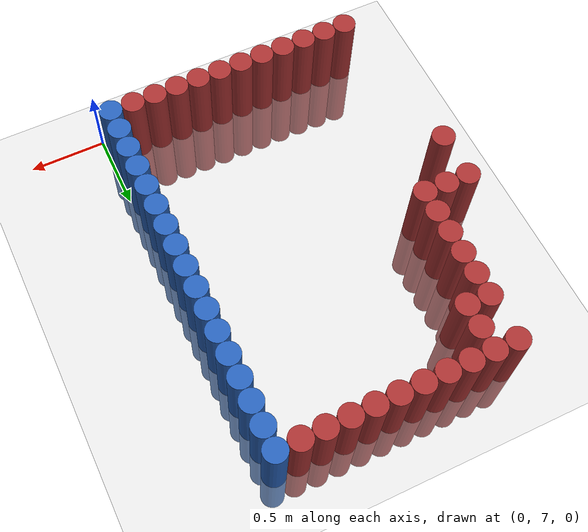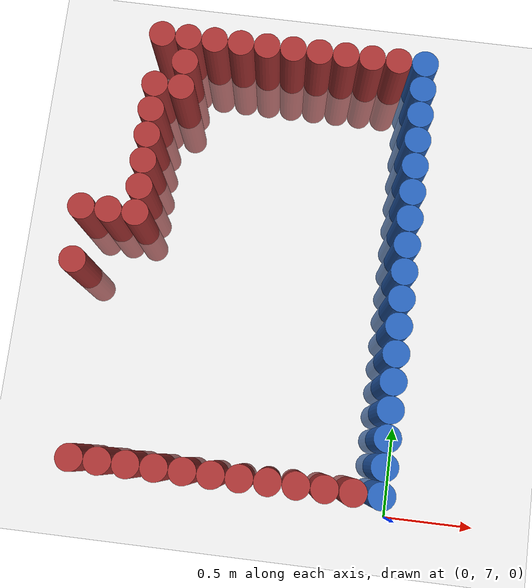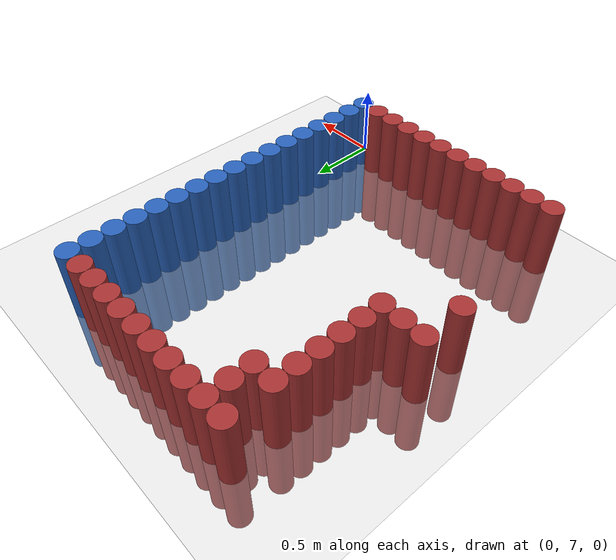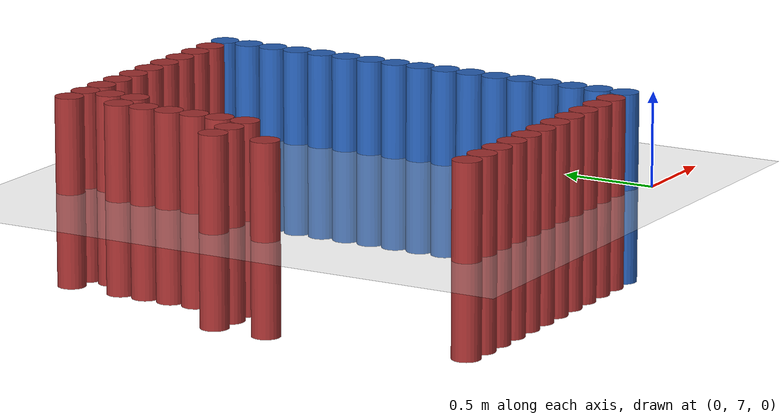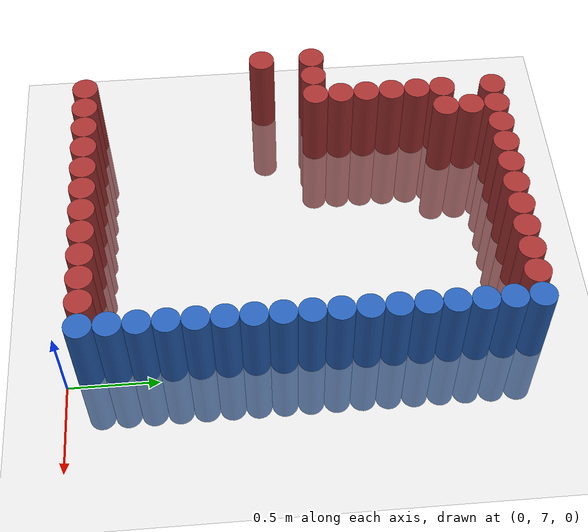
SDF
<sdf version="1.6">
 <world name="default">
  <model name="ground_plane">
   <static>1</static>
   <link name="link">
    <collision name="collision">
     <geometry><plane><normal>0 0 1</normal><size>100 100</size></plane></geometry>
     <surface><friction><ode><mu>100</mu><mu2>50</mu2></ode></friction></surface>
    </collision>
    <visual name="visual">
     <cast_shadows>0</cast_shadows>
     <geometry><plane><normal>0 0 1</normal><size>100 100</size></plane></geometry>
     <material>
      <script><uri>file://media/materials/scripts/gazebo.material</uri><name>Gazebo/Grey</name></script>
     </material>
    </visual>
   </link>
  </model>
  <model name="unit_cylinder_214">
   <static>1</static>
   <pose>-1.875000 8.175000 0.000000 0.000000 0.000000 0.000000</pose>
   <link name="link">
    <inertial>
     <mass>1</mass>
     <inertia><ixx>0.145833</ixx><ixy>0</ixy><ixz>0</ixz><iyy>0.145833</iyy><iyz>0</iyz><izz>0.125</izz></inertia>
    </inertial>
    <collision name="collision">
     <geometry><cylinder><radius>0.075000</radius><length>1</length></cylinder></geometry>
    </collision>
    <visual name="visual">
     <geometry><cylinder><radius>0.075000</radius><length>1</length></cylinder></geometry>
     <material>
      <ambient>0.648000 0.192000 0.192000 1</ambient>
      <diffuse>0.648000 0.192000 0.192000 1</diffuse>
     </material>
     <material>
      <script><name>Gazebo/Grey</name><uri>file://media/materials/scripts/gazebo.material</uri></script>
     </material>
    </visual>
   </link>
  </model>
  <model name="unit_cylinder_215">
   <static>1</static>
   <pose>-1.875000 8.475000 0.000000 0.000000 0.000000 0.000000</pose>
   <link name="link">
    <inertial>
     <mass>1</mass>
     <inertia><ixx>0.145833</ixx><ixy>0</ixy><ixz>0</ixz><iyy>0.145833</iyy><iyz>0</iyz><izz>0.125</izz></inertia>
    </inertial>
    <collision name="collision">
     <geometry><cylinder><radius>0.075000</radius><length>1</length></cylinder></geometry>
    </collision>
    <visual name="visual">
     <geometry><cylinder><radius>0.075000</radius><length>1</length></cylinder></geometry>
     <material>
      <ambient>0.648000 0.192000 0.192000 1</ambient>
      <diffuse>0.648000 0.192000 0.192000 1</diffuse>
     </material>
     <material>
      <script><name>Gazebo/Grey</name><uri>file://media/materials/scripts/gazebo.material</uri></script>
     </material>
    </visual>
   </link>
  </model>
  <model name="unit_cylinder_221">
   <static>1</static>
   <pose>-1.725000 7.125000 0.000000 0.000000 0.000000 0.000000</pose>
   <link name="link">
    <inertial>
     <mass>1</mass>
     <inertia><ixx>0.145833</ixx><ixy>0</ixy><ixz>0</ixz><iyy>0.145833</iyy><iyz>0</iyz><izz>0.125</izz></inertia>
    </inertial>
    <collision name="collision">
     <geometry><cylinder><radius>0.075000</radius><length>1</length></cylinder></geometry>
    </collision>
    <visual name="visual">
     <geometry><cylinder><radius>0.075000</radius><length>1</length></cylinder></geometry>
     <material>
      <ambient>0.648000 0.192000 0.192000 1</ambient>
      <diffuse>0.648000 0.192000 0.192000 1</diffuse>
     </material>
     <material>
      <script><name>Gazebo/Grey</name><uri>file://media/materials/scripts/gazebo.material</uri></script>
     </material>
    </visual>
   </link>
  </model>
  <model name="unit_cylinder_222">
   <static>1</static>
   <pose>-1.725000 8.475000 0.000000 0.000000 0.000000 0.000000</pose>
   <link name="link">
    <inertial>
     <mass>1</mass>
     <inertia><ixx>0.145833</ixx><ixy>0</ixy><ixz>0</ixz><iyy>0.145833</iyy><iyz>0</iyz><izz>0.125</izz></inertia>
    </inertial>
    <collision name="collision">
     <geometry><cylinder><radius>0.075000</radius><length>1</length></cylinder></geometry>
    </collision>
    <visual name="visual">
     <geometry><cylinder><radius>0.075000</radius><length>1</length></cylinder></geometry>
     <material>
      <ambient>0.648000 0.192000 0.192000 1</ambient>
      <diffuse>0.648000 0.192000 0.192000 1</diffuse>
     </material>
     <material>
      <script><name>Gazebo/Grey</name><uri>file://media/materials/scripts/gazebo.material</uri></script>
     </material>
    </visual>
   </link>
  </model>
  <model name="unit_cylinder_225">
   <static>1</static>
   <pose>-1.575000 7.125000 0.000000 0.000000 0.000000 0.000000</pose>
   <link name="link">
    <inertial>
     <mass>1</mass>
     <inertia><ixx>0.145833</ixx><ixy>0</ixy><ixz>0</ixz><iyy>0.145833</iyy><iyz>0</iyz><izz>0.125</izz></inertia>
    </inertial>
    <collision name="collision">
     <geometry><cylinder><radius>0.075000</radius><length>1</length></cylinder></geometry>
    </collision>
    <visual name="visual">
     <geometry><cylinder><radius>0.075000</radius><length>1</length></cylinder></geometry>
     <material>
      <ambient>0.648000 0.192000 0.192000 1</ambient>
      <diffuse>0.648000 0.192000 0.192000 1</diffuse>
     </material>
     <material>
      <script><name>Gazebo/Grey</name><uri>file://media/materials/scripts/gazebo.material</uri></script>
     </material>
    </visual>
   </link>
  </model>
  <model name="unit_cylinder_226">
   <static>1</static>
   <pose>-1.575000 8.475000 0.000000 0.000000 0.000000 0.000000</pose>
   <link name="link">
    <inertial>
     <mass>1</mass>
     <inertia><ixx>0.145833</ixx><ixy>0</ixy><ixz>0</ixz><iyy>0.145833</iyy><iyz>0</iyz><izz>0.125</izz></inertia>
    </inertial>
    <collision name="collision">
     <geometry><cylinder><radius>0.075000</radius><length>1</length></cylinder></geometry>
    </collision>
    <visual name="visual">
     <geometry><cylinder><radius>0.075000</radius><length>1</length></cylinder></geometry>
     <material>
      <ambient>0.648000 0.192000 0.192000 1</ambient>
      <diffuse>0.648000 0.192000 0.192000 1</diffuse>
     </material>
     <material>
      <script><name>Gazebo/Grey</name><uri>file://media/materials/scripts/gazebo.material</uri></script>
     </material>
    </visual>
   </link>
  </model>
  <model name="unit_cylinder_227">
   <static>1</static>
   <pose>-1.575000 8.625000 0.000000 0.000000 0.000000 0.000000</pose>
   <link name="link">
    <inertial>
     <mass>1</mass>
     <inertia><ixx>0.145833</ixx><ixy>0</ixy><ixz>0</ixz><iyy>0.145833</iyy><iyz>0</iyz><izz>0.125</izz></inertia>
    </inertial>
    <collision name="collision">
     <geometry><cylinder><radius>0.075000</radius><length>1</length></cylinder></geometry>
    </collision>
    <visual name="visual">
     <geometry><cylinder><radius>0.075000</radius><length>1</length></cylinder></geometry>
     <material>
      <ambient>0.648000 0.192000 0.192000 1</ambient>
      <diffuse>0.648000 0.192000 0.192000 1</diffuse>
     </material>
     <material>
      <script><name>Gazebo/Grey</name><uri>file://media/materials/scripts/gazebo.material</uri></script>
     </material>
    </visual>
   </link>
  </model>
  <model name="unit_cylinder_228">
   <static>1</static>
   <pose>-1.575000 8.775000 0.000000 0.000000 0.000000 0.000000</pose>
   <link name="link">
    <inertial>
     <mass>1</mass>
     <inertia><ixx>0.145833</ixx><ixy>0</ixy><ixz>0</ixz><iyy>0.145833</iyy><iyz>0</iyz><izz>0.125</izz></inertia>
    </inertial>
    <collision name="collision">
     <geometry><cylinder><radius>0.075000</radius><length>1</length></cylinder></geometry>
    </collision>
    <visual name="visual">
     <geometry><cylinder><radius>0.075000</radius><length>1</length></cylinder></geometry>
     <material>
      <ambient>0.648000 0.192000 0.192000 1</ambient>
      <diffuse>0.648000 0.192000 0.192000 1</diffuse>
     </material>
     <material>
      <script><name>Gazebo/Grey</name><uri>file://media/materials/scripts/gazebo.material</uri></script>
     </material>
    </visual>
   </link>
  </model>
  <model name="unit_cylinder_229">
   <static>1</static>
   <pose>-1.575000 8.925000 0.000000 0.000000 0.000000 0.000000</pose>
   <link name="link">
    <inertial>
     <mass>1</mass>
     <inertia><ixx>0.145833</ixx><ixy>0</ixy><ixz>0</ixz><iyy>0.145833</iyy><iyz>0</iyz><izz>0.125</izz></inertia>
    </inertial>
    <collision name="collision">
     <geometry><cylinder><radius>0.075000</radius><length>1</length></cylinder></geometry>
    </collision>
    <visual name="visual">
     <geometry><cylinder><radius>0.075000</radius><length>1</length></cylinder></geometry>
     <material>
      <ambient>0.648000 0.192000 0.192000 1</ambient>
      <diffuse>0.648000 0.192000 0.192000 1</diffuse>
     </material>
     <material>
      <script><name>Gazebo/Grey</name><uri>file://media/materials/scripts/gazebo.material</uri></script>
     </material>
    </visual>
   </link>
  </model>
  <model name="unit_cylinder_230">
   <static>1</static>
   <pose>-1.575000 9.075000 0.000000 0.000000 0.000000 0.000000</pose>
   <link name="link">
    <inertial>
     <mass>1</mass>
     <inertia><ixx>0.145833</ixx><ixy>0</ixy><ixz>0</ixz><iyy>0.145833</iyy><iyz>0</iyz><izz>0.125</izz></inertia>
    </inertial>
    <collision name="collision">
     <geometry><cylinder><radius>0.075000</radius><length>1</length></cylinder></geometry>
    </collision>
    <visual name="visual">
     <geometry><cylinder><radius>0.075000</radius><length>1</length></cylinder></geometry>
     <material>
      <ambient>0.648000 0.192000 0.192000 1</ambient>
      <diffuse>0.648000 0.192000 0.192000 1</diffuse>
     </material>
     <material>
      <script><name>Gazebo/Grey</name><uri>file://media/materials/scripts/gazebo.material</uri></script>
     </material>
    </visual>
   </link>
  </model>
  <model name="unit_cylinder_231">
   <static>1</static>
   <pose>-1.575000 9.225000 0.000000 0.000000 0.000000 0.000000</pose>
   <link name="link">
    <inertial>
     <mass>1</mass>
     <inertia><ixx>0.145833</ixx><ixy>0</ixy><ixz>0</ixz><iyy>0.145833</iyy><iyz>0</iyz><izz>0.125</izz></inertia>
    </inertial>
    <collision name="collision">
     <geometry><cylinder><radius>0.075000</radius><length>1</length></cylinder></geometry>
    </collision>
    <visual name="visual">
     <geometry><cylinder><radius>0.075000</radius><length>1</length></cylinder></geometry>
     <material>
      <ambient>0.648000 0.192000 0.192000 1</ambient>
      <diffuse>0.648000 0.192000 0.192000 1</diffuse>
     </material>
     <material>
      <script><name>Gazebo/Grey</name><uri>file://media/materials/scripts/gazebo.material</uri></script>
     </material>
    </visual>
   </link>
  </model>
  <model name="unit_cylinder_232">
   <static>1</static>
   <pose>-1.575000 9.525000 0.000000 0.000000 0.000000 0.000000</pose>
   <link name="link">
    <inertial>
     <mass>1</mass>
     <inertia><ixx>0.145833</ixx><ixy>0</ixy><ixz>0</ixz><iyy>0.145833</iyy><iyz>0</iyz><izz>0.125</izz></inertia>
    </inertial>
    <collision name="collision">
     <geometry><cylinder><radius>0.075000</radius><length>1</length></cylinder></geometry>
    </collision>
    <visual name="visual">
     <geometry><cylinder><radius>0.075000</radius><length>1</length></cylinder></geometry>
     <material>
      <ambient>0.648000 0.192000 0.192000 1</ambient>
      <diffuse>0.648000 0.192000 0.192000 1</diffuse>
     </material>
     <material>
      <script><name>Gazebo/Grey</name><uri>file://media/materials/scripts/gazebo.material</uri></script>
     </material>
    </visual>
   </link>
  </model>
  <model name="unit_cylinder_242">
   <static>1</static>
   <pose>-1.425000 7.125000 0.000000 0.000000 0.000000 0.000000</pose>
   <link name="link">
    <inertial>
     <mass>1</mass>
     <inertia><ixx>0.145833</ixx><ixy>0</ixy><ixz>0</ixz><iyy>0.145833</iyy><iyz>0</iyz><izz>0.125</izz></inertia>
    </inertial>
    <collision name="collision">
     <geometry><cylinder><radius>0.075000</radius><length>1</length></cylinder></geometry>
    </collision>
    <visual name="visual">
     <geometry><cylinder><radius>0.075000</radius><length>1</length></cylinder></geometry>
     <material>
      <ambient>0.648000 0.192000 0.192000 1</ambient>
      <diffuse>0.648000 0.192000 0.192000 1</diffuse>
     </material>
     <material>
      <script><name>Gazebo/Grey</name><uri>file://media/materials/scripts/gazebo.material</uri></script>
     </material>
    </visual>
   </link>
  </model>
  <model name="unit_cylinder_243">
   <static>1</static>
   <pose>-1.425000 9.225000 0.000000 0.000000 0.000000 0.000000</pose>
   <link name="link">
    <inertial>
     <mass>1</mass>
     <inertia><ixx>0.145833</ixx><ixy>0</ixy><ixz>0</ixz><iyy>0.145833</iyy><iyz>0</iyz><izz>0.125</izz></inertia>
    </inertial>
    <collision name="collision">
     <geometry><cylinder><radius>0.075000</radius><length>1</length></cylinder></geometry>
    </collision>
    <visual name="visual">
     <geometry><cylinder><radius>0.075000</radius><length>1</length></cylinder></geometry>
     <material>
      <ambient>0.648000 0.192000 0.192000 1</ambient>
      <diffuse>0.648000 0.192000 0.192000 1</diffuse>
     </material>
     <material>
      <script><name>Gazebo/Grey</name><uri>file://media/materials/scripts/gazebo.material</uri></script>
     </material>
    </visual>
   </link>
  </model>
  <model name="unit_cylinder_244">
   <static>1</static>
   <pose>-1.425000 9.375000 0.000000 0.000000 0.000000 0.000000</pose>
   <link name="link">
    <inertial>
     <mass>1</mass>
     <inertia><ixx>0.145833</ixx><ixy>0</ixy><ixz>0</ixz><iyy>0.145833</iyy><iyz>0</iyz><izz>0.125</izz></inertia>
    </inertial>
    <collision name="collision">
     <geometry><cylinder><radius>0.075000</radius><length>1</length></cylinder></geometry>
    </collision>
    <visual name="visual">
     <geometry><cylinder><radius>0.075000</radius><length>1</length></cylinder></geometry>
     <material>
      <ambient>0.648000 0.192000 0.192000 1</ambient>
      <diffuse>0.648000 0.192000 0.192000 1</diffuse>
     </material>
     <material>
      <script><name>Gazebo/Grey</name><uri>file://media/materials/scripts/gazebo.material</uri></script>
     </material>
    </visual>
   </link>
  </model>
  <model name="unit_cylinder_245">
   <static>1</static>
   <pose>-1.425000 9.525000 0.000000 0.000000 0.000000 0.000000</pose>
   <link name="link">
    <inertial>
     <mass>1</mass>
     <inertia><ixx>0.145833</ixx><ixy>0</ixy><ixz>0</ixz><iyy>0.145833</iyy><iyz>0</iyz><izz>0.125</izz></inertia>
    </inertial>
    <collision name="collision">
     <geometry><cylinder><radius>0.075000</radius><length>1</length></cylinder></geometry>
    </collision>
    <visual name="visual">
     <geometry><cylinder><radius>0.075000</radius><length>1</length></cylinder></geometry>
     <material>
      <ambient>0.648000 0.192000 0.192000 1</ambient>
      <diffuse>0.648000 0.192000 0.192000 1</diffuse>
     </material>
     <material>
      <script><name>Gazebo/Grey</name><uri>file://media/materials/scripts/gazebo.material</uri></script>
     </material>
    </visual>
   </link>
  </model>
  <model name="unit_cylinder_256">
   <static>1</static>
   <pose>-1.275000 7.125000 0.000000 0.000000 0.000000 0.000000</pose>
   <link name="link">
    <inertial>
     <mass>1</mass>
     <inertia><ixx>0.145833</ixx><ixy>0</ixy><ixz>0</ixz><iyy>0.145833</iyy><iyz>0</iyz><izz>0.125</izz></inertia>
    </inertial>
    <collision name="collision">
     <geometry><cylinder><radius>0.075000</radius><length>1</length></cylinder></geometry>
    </collision>
    <visual name="visual">
     <geometry><cylinder><radius>0.075000</radius><length>1</length></cylinder></geometry>
     <material>
      <ambient>0.648000 0.192000 0.192000 1</ambient>
      <diffuse>0.648000 0.192000 0.192000 1</diffuse>
     </material>
     <material>
      <script><name>Gazebo/Grey</name><uri>file://media/materials/scripts/gazebo.material</uri></script>
     </material>
    </visual>
   </link>
  </model>
  <model name="unit_cylinder_257">
   <static>1</static>
   <pose>-1.275000 9.525000 0.000000 0.000000 0.000000 0.000000</pose>
   <link name="link">
    <inertial>
     <mass>1</mass>
     <inertia><ixx>0.145833</ixx><ixy>0</ixy><ixz>0</ixz><iyy>0.145833</iyy><iyz>0</iyz><izz>0.125</izz></inertia>
    </inertial>
    <collision name="collision">
     <geometry><cylinder><radius>0.075000</radius><length>1</length></cylinder></geometry>
    </collision>
    <visual name="visual">
     <geometry><cylinder><radius>0.075000</radius><length>1</length></cylinder></geometry>
     <material>
      <ambient>0.648000 0.192000 0.192000 1</ambient>
      <diffuse>0.648000 0.192000 0.192000 1</diffuse>
     </material>
     <material>
      <script><name>Gazebo/Grey</name><uri>file://media/materials/scripts/gazebo.material</uri></script>
     </material>
    </visual>
   </link>
  </model>
  <model name="unit_cylinder_260">
   <static>1</static>
   <pose>-1.125000 7.125000 0.000000 0.000000 0.000000 0.000000</pose>
   <link name="link">
    <inertial>
     <mass>1</mass>
     <inertia><ixx>0.145833</ixx><ixy>0</ixy><ixz>0</ixz><iyy>0.145833</iyy><iyz>0</iyz><izz>0.125</izz></inertia>
    </inertial>
    <collision name="collision">
     <geometry><cylinder><radius>0.075000</radius><length>1</length></cylinder></geometry>
    </collision>
    <visual name="visual">
     <geometry><cylinder><radius>0.075000</radius><length>1</length></cylinder></geometry>
     <material>
      <ambient>0.648000 0.192000 0.192000 1</ambient>
      <diffuse>0.648000 0.192000 0.192000 1</diffuse>
     </material>
     <material>
      <script><name>Gazebo/Grey</name><uri>file://media/materials/scripts/gazebo.material</uri></script>
     </material>
    </visual>
   </link>
  </model>
  <model name="unit_cylinder_261">
   <static>1</static>
   <pose>-1.125000 9.525000 0.000000 0.000000 0.000000 0.000000</pose>
   <link name="link">
    <inertial>
     <mass>1</mass>
     <inertia><ixx>0.145833</ixx><ixy>0</ixy><ixz>0</ixz><iyy>0.145833</iyy><iyz>0</iyz><izz>0.125</izz></inertia>
    </inertial>
    <collision name="collision">
     <geometry><cylinder><radius>0.075000</radius><length>1</length></cylinder></geometry>
    </collision>
    <visual name="visual">
     <geometry><cylinder><radius>0.075000</radius><length>1</length></cylinder></geometry>
     <material>
      <ambient>0.648000 0.192000 0.192000 1</ambient>
      <diffuse>0.648000 0.192000 0.192000 1</diffuse>
     </material>
     <material>
      <script><name>Gazebo/Grey</name><uri>file://media/materials/scripts/gazebo.material</uri></script>
     </material>
    </visual>
   </link>
  </model>
  <model name="unit_cylinder_270">
   <static>1</static>
   <pose>-0.975000 7.125000 0.000000 0.000000 0.000000 0.000000</pose>
   <link name="link">
    <inertial>
     <mass>1</mass>
     <inertia><ixx>0.145833</ixx><ixy>0</ixy><ixz>0</ixz><iyy>0.145833</iyy><iyz>0</iyz><izz>0.125</izz></inertia>
    </inertial>
    <collision name="collision">
     <geometry><cylinder><radius>0.075000</radius><length>1</length></cylinder></geometry>
    </collision>
    <visual name="visual">
     <geometry><cylinder><radius>0.075000</radius><length>1</length></cylinder></geometry>
     <material>
      <ambient>0.648000 0.192000 0.192000 1</ambient>
      <diffuse>0.648000 0.192000 0.192000 1</diffuse>
     </material>
     <material>
      <script><name>Gazebo/Grey</name><uri>file://media/materials/scripts/gazebo.material</uri></script>
     </material>
    </visual>
   </link>
  </model>
  <model name="unit_cylinder_271">
   <static>1</static>
   <pose>-0.975000 9.525000 0.000000 0.000000 0.000000 0.000000</pose>
   <link name="link">
    <inertial>
     <mass>1</mass>
     <inertia><ixx>0.145833</ixx><ixy>0</ixy><ixz>0</ixz><iyy>0.145833</iyy><iyz>0</iyz><izz>0.125</izz></inertia>
    </inertial>
    <collision name="collision">
     <geometry><cylinder><radius>0.075000</radius><length>1</length></cylinder></geometry>
    </collision>
    <visual name="visual">
     <geometry><cylinder><radius>0.075000</radius><length>1</length></cylinder></geometry>
     <material>
      <ambient>0.648000 0.192000 0.192000 1</ambient>
      <diffuse>0.648000 0.192000 0.192000 1</diffuse>
     </material>
     <material>
      <script><name>Gazebo/Grey</name><uri>file://media/materials/scripts/gazebo.material</uri></script>
     </material>
    </visual>
   </link>
  </model>
  <model name="unit_cylinder_282">
   <static>1</static>
   <pose>-0.825000 7.125000 0.000000 0.000000 0.000000 0.000000</pose>
   <link name="link">
    <inertial>
     <mass>1</mass>
     <inertia><ixx>0.145833</ixx><ixy>0</ixy><ixz>0</ixz><iyy>0.145833</iyy><iyz>0</iyz><izz>0.125</izz></inertia>
    </inertial>
    <collision name="collision">
     <geometry><cylinder><radius>0.075000</radius><length>1</length></cylinder></geometry>
    </collision>
    <visual name="visual">
     <geometry><cylinder><radius>0.075000</radius><length>1</length></cylinder></geometry>
     <material>
      <ambient>0.648000 0.192000 0.192000 1</ambient>
      <diffuse>0.648000 0.192000 0.192000 1</diffuse>
     </material>
     <material>
      <script><name>Gazebo/Grey</name><uri>file://media/materials/scripts/gazebo.material</uri></script>
     </material>
    </visual>
   </link>
  </model>
  <model name="unit_cylinder_283">
   <static>1</static>
   <pose>-0.825000 9.525000 0.000000 0.000000 0.000000 0.000000</pose>
   <link name="link">
    <inertial>
     <mass>1</mass>
     <inertia><ixx>0.145833</ixx><ixy>0</ixy><ixz>0</ixz><iyy>0.145833</iyy><iyz>0</iyz><izz>0.125</izz></inertia>
    </inertial>
    <collision name="collision">
     <geometry><cylinder><radius>0.075000</radius><length>1</length></cylinder></geometry>
    </collision>
    <visual name="visual">
     <geometry><cylinder><radius>0.075000</radius><length>1</length></cylinder></geometry>
     <material>
      <ambient>0.648000 0.192000 0.192000 1</ambient>
      <diffuse>0.648000 0.192000 0.192000 1</diffuse>
     </material>
     <material>
      <script><name>Gazebo/Grey</name><uri>file://media/materials/scripts/gazebo.material</uri></script>
     </material>
    </visual>
   </link>
  </model>
  <model name="unit_cylinder_286">
   <static>1</static>
   <pose>-0.675000 7.125000 0.000000 0.000000 0.000000 0.000000</pose>
   <link name="link">
    <inertial>
     <mass>1</mass>
     <inertia><ixx>0.145833</ixx><ixy>0</ixy><ixz>0</ixz><iyy>0.145833</iyy><iyz>0</iyz><izz>0.125</izz></inertia>
    </inertial>
    <collision name="collision">
     <geometry><cylinder><radius>0.075000</radius><length>1</length></cylinder></geometry>
    </collision>
    <visual name="visual">
     <geometry><cylinder><radius>0.075000</radius><length>1</length></cylinder></geometry>
     <material>
      <ambient>0.648000 0.192000 0.192000 1</ambient>
      <diffuse>0.648000 0.192000 0.192000 1</diffuse>
     </material>
     <material>
      <script><name>Gazebo/Grey</name><uri>file://media/materials/scripts/gazebo.material</uri></script>
     </material>
    </visual>
   </link>
  </model>
  <model name="unit_cylinder_287">
   <static>1</static>
   <pose>-0.675000 9.525000 0.000000 0.000000 0.000000 0.000000</pose>
   <link name="link">
    <inertial>
     <mass>1</mass>
     <inertia><ixx>0.145833</ixx><ixy>0</ixy><ixz>0</ixz><iyy>0.145833</iyy><iyz>0</iyz><izz>0.125</izz></inertia>
    </inertial>
    <collision name="collision">
     <geometry><cylinder><radius>0.075000</radius><length>1</length></cylinder></geometry>
    </collision>
    <visual name="visual">
     <geometry><cylinder><radius>0.075000</radius><length>1</length></cylinder></geometry>
     <material>
      <ambient>0.648000 0.192000 0.192000 1</ambient>
      <diffuse>0.648000 0.192000 0.192000 1</diffuse>
     </material>
     <material>
      <script><name>Gazebo/Grey</name><uri>file://media/materials/scripts/gazebo.material</uri></script>
     </material>
    </visual>
   </link>
  </model>
  <model name="unit_cylinder_290">
   <static>1</static>
   <pose>-0.525000 7.125000 0.000000 0.000000 0.000000 0.000000</pose>
   <link name="link">
    <inertial>
     <mass>1</mass>
     <inertia><ixx>0.145833</ixx><ixy>0</ixy><ixz>0</ixz><iyy>0.145833</iyy><iyz>0</iyz><izz>0.125</izz></inertia>
    </inertial>
    <collision name="collision">
     <geometry><cylinder><radius>0.075000</radius><length>1</length></cylinder></geometry>
    </collision>
    <visual name="visual">
     <geometry><cylinder><radius>0.075000</radius><length>1</length></cylinder></geometry>
     <material>
      <ambient>0.648000 0.192000 0.192000 1</ambient>
      <diffuse>0.648000 0.192000 0.192000 1</diffuse>
     </material>
     <material>
      <script><name>Gazebo/Grey</name><uri>file://media/materials/scripts/gazebo.material</uri></script>
     </material>
    </visual>
   </link>
  </model>
  <model name="unit_cylinder_291">
   <static>1</static>
   <pose>-0.525000 9.525000 0.000000 0.000000 0.000000 0.000000</pose>
   <link name="link">
    <inertial>
     <mass>1</mass>
     <inertia><ixx>0.145833</ixx><ixy>0</ixy><ixz>0</ixz><iyy>0.145833</iyy><iyz>0</iyz><izz>0.125</izz></inertia>
    </inertial>
    <collision name="collision">
     <geometry><cylinder><radius>0.075000</radius><length>1</length></cylinder></geometry>
    </collision>
    <visual name="visual">
     <geometry><cylinder><radius>0.075000</radius><length>1</length></cylinder></geometry>
     <material>
      <ambient>0.648000 0.192000 0.192000 1</ambient>
      <diffuse>0.648000 0.192000 0.192000 1</diffuse>
     </material>
     <material>
      <script><name>Gazebo/Grey</name><uri>file://media/materials/scripts/gazebo.material</uri></script>
     </material>
    </visual>
   </link>
  </model>
  <model name="unit_cylinder_300">
   <static>1</static>
   <pose>-0.375000 7.125000 0.000000 0.000000 0.000000 0.000000</pose>
   <link name="link">
    <inertial>
     <mass>1</mass>
     <inertia><ixx>0.145833</ixx><ixy>0</ixy><ixz>0</ixz><iyy>0.145833</iyy><iyz>0</iyz><izz>0.125</izz></inertia>
    </inertial>
    <collision name="collision">
     <geometry><cylinder><radius>0.075000</radius><length>1</length></cylinder></geometry>
    </collision>
    <visual name="visual">
     <geometry><cylinder><radius>0.075000</radius><length>1</length></cylinder></geometry>
     <material>
      <ambient>0.648000 0.192000 0.192000 1</ambient>
      <diffuse>0.648000 0.192000 0.192000 1</diffuse>
     </material>
     <material>
      <script><name>Gazebo/Grey</name><uri>file://media/materials/scripts/gazebo.material</uri></script>
     </material>
    </visual>
   </link>
  </model>
  <model name="unit_cylinder_301">
   <static>1</static>
   <pose>-0.375000 9.525000 0.000000 0.000000 0.000000 0.000000</pose>
   <link name="link">
    <inertial>
     <mass>1</mass>
     <inertia><ixx>0.145833</ixx><ixy>0</ixy><ixz>0</ixz><iyy>0.145833</iyy><iyz>0</iyz><izz>0.125</izz></inertia>
    </inertial>
    <collision name="collision">
     <geometry><cylinder><radius>0.075000</radius><length>1</length></cylinder></geometry>
    </collision>
    <visual name="visual">
     <geometry><cylinder><radius>0.075000</radius><length>1</length></cylinder></geometry>
     <material>
      <ambient>0.648000 0.192000 0.192000 1</ambient>
      <diffuse>0.648000 0.192000 0.192000 1</diffuse>
     </material>
     <material>
      <script><name>Gazebo/Grey</name><uri>file://media/materials/scripts/gazebo.material</uri></script>
     </material>
    </visual>
   </link>
  </model>
  <model name="unit_cylinder_306">
   <static>1</static>
   <pose>-0.225000 7.125000 0.000000 0.000000 0.000000 0.000000</pose>
   <link name="link">
    <inertial>
     <mass>1</mass>
     <inertia><ixx>0.145833</ixx><ixy>0</ixy><ixz>0</ixz><iyy>0.145833</iyy><iyz>0</iyz><izz>0.125</izz></inertia>
    </inertial>
    <collision name="collision">
     <geometry><cylinder><radius>0.075000</radius><length>1</length></cylinder></geometry>
    </collision>
    <visual name="visual">
     <geometry><cylinder><radius>0.075000</radius><length>1</length></cylinder></geometry>
     <material>
      <ambient>0.648000 0.192000 0.192000 1</ambient>
      <diffuse>0.648000 0.192000 0.192000 1</diffuse>
     </material>
     <material>
      <script><name>Gazebo/Grey</name><uri>file://media/materials/scripts/gazebo.material</uri></script>
     </material>
    </visual>
   </link>
  </model>
  <model name="unit_cylinder_307">
   <static>1</static>
   <pose>-0.225000 9.525000 0.000000 0.000000 0.000000 0.000000</pose>
   <link name="link">
    <inertial>
     <mass>1</mass>
     <inertia><ixx>0.145833</ixx><ixy>0</ixy><ixz>0</ixz><iyy>0.145833</iyy><iyz>0</iyz><izz>0.125</izz></inertia>
    </inertial>
    <collision name="collision">
     <geometry><cylinder><radius>0.075000</radius><length>1</length></cylinder></geometry>
    </collision>
    <visual name="visual">
     <geometry><cylinder><radius>0.075000</radius><length>1</length></cylinder></geometry>
     <material>
      <ambient>0.648000 0.192000 0.192000 1</ambient>
      <diffuse>0.648000 0.192000 0.192000 1</diffuse>
     </material>
     <material>
      <script><name>Gazebo/Grey</name><uri>file://media/materials/scripts/gazebo.material</uri></script>
     </material>
    </visual>
   </link>
  </model>
  <model name="unit_cylinder_321">
   <static>1</static>
   <pose>-0.075000 7.125000 0.000000 0.000000 0.000000 0.000000</pose>
   <link name="link">
    <inertial>
     <mass>1</mass>
     <inertia><ixx>0.145833</ixx><ixy>0</ixy><ixz>0</ixz><iyy>0.145833</iyy><iyz>0</iyz><izz>0.125</izz></inertia>
    </inertial>
    <collision name="collision">
     <geometry><cylinder><radius>0.075000</radius><length>1</length></cylinder></geometry>
    </collision>
    <visual name="visual">
     <geometry><cylinder><radius>0.075000</radius><length>1</length></cylinder></geometry>
     <material>
      <ambient>0.152000 0.379000 0.720000 1</ambient>
      <diffuse>0.152000 0.379000 0.720000 1</diffuse>
     </material>
     <material>
      <script><name>Gazebo/Grey</name><uri>file://media/materials/scripts/gazebo.material</uri></script>
     </material>
    </visual>
   </link>
  </model>
  <model name="unit_cylinder_322">
   <static>1</static>
   <pose>-0.075000 7.275000 0.000000 0.000000 0.000000 0.000000</pose>
   <link name="link">
    <inertial>
     <mass>1</mass>
     <inertia><ixx>0.145833</ixx><ixy>0</ixy><ixz>0</ixz><iyy>0.145833</iyy><iyz>0</iyz><izz>0.125</izz></inertia>
    </inertial>
    <collision name="collision">
     <geometry><cylinder><radius>0.075000</radius><length>1</length></cylinder></geometry>
    </collision>
    <visual name="visual">
     <geometry><cylinder><radius>0.075000</radius><length>1</length></cylinder></geometry>
     <material>
      <ambient>0.152000 0.379000 0.720000 1</ambient>
      <diffuse>0.152000 0.379000 0.720000 1</diffuse>
     </material>
     <material>
      <script><name>Gazebo/Grey</name><uri>file://media/materials/scripts/gazebo.material</uri></script>
     </material>
    </visual>
   </link>
  </model>
  <model name="unit_cylinder_323">
   <static>1</static>
   <pose>-0.075000 7.425000 0.000000 0.000000 0.000000 0.000000</pose>
   <link name="link">
    <inertial>
     <mass>1</mass>
     <inertia><ixx>0.145833</ixx><ixy>0</ixy><ixz>0</ixz><iyy>0.145833</iyy><iyz>0</iyz><izz>0.125</izz></inertia>
    </inertial>
    <collision name="collision">
     <geometry><cylinder><radius>0.075000</radius><length>1</length></cylinder></geometry>
    </collision>
    <visual name="visual">
     <geometry><cylinder><radius>0.075000</radius><length>1</length></cylinder></geometry>
     <material>
      <ambient>0.152000 0.379000 0.720000 1</ambient>
      <diffuse>0.152000 0.379000 0.720000 1</diffuse>
     </material>
     <material>
      <script><name>Gazebo/Grey</name><uri>file://media/materials/scripts/gazebo.material</uri></script>
     </material>
    </visual>
   </link>
  </model>
  <model name="unit_cylinder_324">
   <static>1</static>
   <pose>-0.075000 7.575000 0.000000 0.000000 0.000000 0.000000</pose>
   <link name="link">
    <inertial>
     <mass>1</mass>
     <inertia><ixx>0.145833</ixx><ixy>0</ixy><ixz>0</ixz><iyy>0.145833</iyy><iyz>0</iyz><izz>0.125</izz></inertia>
    </inertial>
    <collision name="collision">
     <geometry><cylinder><radius>0.075000</radius><length>1</length></cylinder></geometry>
    </collision>
    <visual name="visual">
     <geometry><cylinder><radius>0.075000</radius><length>1</length></cylinder></geometry>
     <material>
      <ambient>0.152000 0.379000 0.720000 1</ambient>
      <diffuse>0.152000 0.379000 0.720000 1</diffuse>
     </material>
     <material>
      <script><name>Gazebo/Grey</name><uri>file://media/materials/scripts/gazebo.material</uri></script>
     </material>
    </visual>
   </link>
  </model>
  <model name="unit_cylinder_325">
   <static>1</static>
   <pose>-0.075000 7.725000 0.000000 0.000000 0.000000 0.000000</pose>
   <link name="link">
    <inertial>
     <mass>1</mass>
     <inertia><ixx>0.145833</ixx><ixy>0</ixy><ixz>0</ixz><iyy>0.145833</iyy><iyz>0</iyz><izz>0.125</izz></inertia>
    </inertial>
    <collision name="collision">
     <geometry><cylinder><radius>0.075000</radius><length>1</length></cylinder></geometry>
    </collision>
    <visual name="visual">
     <geometry><cylinder><radius>0.075000</radius><length>1</length></cylinder></geometry>
     <material>
      <ambient>0.152000 0.379000 0.720000 1</ambient>
      <diffuse>0.152000 0.379000 0.720000 1</diffuse>
     </material>
     <material>
      <script><name>Gazebo/Grey</name><uri>file://media/materials/scripts/gazebo.material</uri></script>
     </material>
    </visual>
   </link>
  </model>
  <model name="unit_cylinder_326">
   <static>1</static>
   <pose>-0.075000 7.875000 0.000000 0.000000 0.000000 0.000000</pose>
   <link name="link">
    <inertial>
     <mass>1</mass>
     <inertia><ixx>0.145833</ixx><ixy>0</ixy><ixz>0</ixz><iyy>0.145833</iyy><iyz>0</iyz><izz>0.125</izz></inertia>
    </inertial>
    <collision name="collision">
     <geometry><cylinder><radius>0.075000</radius><length>1</length></cylinder></geometry>
    </collision>
    <visual name="visual">
     <geometry><cylinder><radius>0.075000</radius><length>1</length></cylinder></geometry>
     <material>
      <ambient>0.152000 0.379000 0.720000 1</ambient>
      <diffuse>0.152000 0.379000 0.720000 1</diffuse>
     </material>
     <material>
      <script><name>Gazebo/Grey</name><uri>file://media/materials/scripts/gazebo.material</uri></script>
     </material>
    </visual>
   </link>
  </model>
  <model name="unit_cylinder_327">
   <static>1</static>
   <pose>-0.075000 8.025000 0.000000 0.000000 0.000000 0.000000</pose>
   <link name="link">
    <inertial>
     <mass>1</mass>
     <inertia><ixx>0.145833</ixx><ixy>0</ixy><ixz>0</ixz><iyy>0.145833</iyy><iyz>0</iyz><izz>0.125</izz></inertia>
    </inertial>
    <collision name="collision">
     <geometry><cylinder><radius>0.075000</radius><length>1</length></cylinder></geometry>
    </collision>
    <visual name="visual">
     <geometry><cylinder><radius>0.075000</radius><length>1</length></cylinder></geometry>
     <material>
      <ambient>0.152000 0.379000 0.720000 1</ambient>
      <diffuse>0.152000 0.379000 0.720000 1</diffuse>
     </material>
     <material>
      <script><name>Gazebo/Grey</name><uri>file://media/materials/scripts/gazebo.material</uri></script>
     </material>
    </visual>
   </link>
  </model>
  <model name="unit_cylinder_328">
   <static>1</static>
   <pose>-0.075000 8.175000 0.000000 0.000000 0.000000 0.000000</pose>
   <link name="link">
    <inertial>
     <mass>1</mass>
     <inertia><ixx>0.145833</ixx><ixy>0</ixy><ixz>0</ixz><iyy>0.145833</iyy><iyz>0</iyz><izz>0.125</izz></inertia>
    </inertial>
    <collision name="collision">
     <geometry><cylinder><radius>0.075000</radius><length>1</length></cylinder></geometry>
    </collision>
    <visual name="visual">
     <geometry><cylinder><radius>0.075000</radius><length>1</length></cylinder></geometry>
     <material>
      <ambient>0.152000 0.379000 0.720000 1</ambient>
      <diffuse>0.152000 0.379000 0.720000 1</diffuse>
     </material>
     <material>
      <script><name>Gazebo/Grey</name><uri>file://media/materials/scripts/gazebo.material</uri></script>
     </material>
    </visual>
   </link>
  </model>
  <model name="unit_cylinder_329">
   <static>1</static>
   <pose>-0.075000 8.325000 0.000000 0.000000 0.000000 0.000000</pose>
   <link name="link">
    <inertial>
     <mass>1</mass>
     <inertia><ixx>0.145833</ixx><ixy>0</ixy><ixz>0</ixz><iyy>0.145833</iyy><iyz>0</iyz><izz>0.125</izz></inertia>
    </inertial>
    <collision name="collision">
     <geometry><cylinder><radius>0.075000</radius><length>1</length></cylinder></geometry>
    </collision>
    <visual name="visual">
     <geometry><cylinder><radius>0.075000</radius><length>1</length></cylinder></geometry>
     <material>
      <ambient>0.152000 0.379000 0.720000 1</ambient>
      <diffuse>0.152000 0.379000 0.720000 1</diffuse>
     </material>
     <material>
      <script><name>Gazebo/Grey</name><uri>file://media/materials/scripts/gazebo.material</uri></script>
     </material>
    </visual>
   </link>
  </model>
  <model name="unit_cylinder_330">
   <static>1</static>
   <pose>-0.075000 8.475000 0.000000 0.000000 0.000000 0.000000</pose>
   <link name="link">
    <inertial>
     <mass>1</mass>
     <inertia><ixx>0.145833</ixx><ixy>0</ixy><ixz>0</ixz><iyy>0.145833</iyy><iyz>0</iyz><izz>0.125</izz></inertia>
    </inertial>
    <collision name="collision">
     <geometry><cylinder><radius>0.075000</radius><length>1</length></cylinder></geometry>
    </collision>
    <visual name="visual">
     <geometry><cylinder><radius>0.075000</radius><length>1</length></cylinder></geometry>
     <material>
      <ambient>0.152000 0.379000 0.720000 1</ambient>
      <diffuse>0.152000 0.379000 0.720000 1</diffuse>
     </material>
     <material>
      <script><name>Gazebo/Grey</name><uri>file://media/materials/scripts/gazebo.material</uri></script>
     </material>
    </visual>
   </link>
  </model>
  <model name="unit_cylinder_331">
   <static>1</static>
   <pose>-0.075000 8.625000 0.000000 0.000000 0.000000 0.000000</pose>
   <link name="link">
    <inertial>
     <mass>1</mass>
     <inertia><ixx>0.145833</ixx><ixy>0</ixy><ixz>0</ixz><iyy>0.145833</iyy><iyz>0</iyz><izz>0.125</izz></inertia>
    </inertial>
    <collision name="collision">
     <geometry><cylinder><radius>0.075000</radius><length>1</length></cylinder></geometry>
    </collision>
    <visual name="visual">
     <geometry><cylinder><radius>0.075000</radius><length>1</length></cylinder></geometry>
     <material>
      <ambient>0.152000 0.379000 0.720000 1</ambient>
      <diffuse>0.152000 0.379000 0.720000 1</diffuse>
     </material>
     <material>
      <script><name>Gazebo/Grey</name><uri>file://media/materials/scripts/gazebo.material</uri></script>
     </material>
    </visual>
   </link>
  </model>
  <model name="unit_cylinder_332">
   <static>1</static>
   <pose>-0.075000 8.775000 0.000000 0.000000 0.000000 0.000000</pose>
   <link name="link">
    <inertial>
     <mass>1</mass>
     <inertia><ixx>0.145833</ixx><ixy>0</ixy><ixz>0</ixz><iyy>0.145833</iyy><iyz>0</iyz><izz>0.125</izz></inertia>
    </inertial>
    <collision name="collision">
     <geometry><cylinder><radius>0.075000</radius><length>1</length></cylinder></geometry>
    </collision>
    <visual name="visual">
     <geometry><cylinder><radius>0.075000</radius><length>1</length></cylinder></geometry>
     <material>
      <ambient>0.152000 0.379000 0.720000 1</ambient>
      <diffuse>0.152000 0.379000 0.720000 1</diffuse>
     </material>
     <material>
      <script><name>Gazebo/Grey</name><uri>file://media/materials/scripts/gazebo.material</uri></script>
     </material>
    </visual>
   </link>
  </model>
  <model name="unit_cylinder_333">
   <static>1</static>
   <pose>-0.075000 8.925000 0.000000 0.000000 0.000000 0.000000</pose>
   <link name="link">
    <inertial>
     <mass>1</mass>
     <inertia><ixx>0.145833</ixx><ixy>0</ixy><ixz>0</ixz><iyy>0.145833</iyy><iyz>0</iyz><izz>0.125</izz></inertia>
    </inertial>
    <collision name="collision">
     <geometry><cylinder><radius>0.075000</radius><length>1</length></cylinder></geometry>
    </collision>
    <visual name="visual">
     <geometry><cylinder><radius>0.075000</radius><length>1</length></cylinder></geometry>
     <material>
      <ambient>0.152000 0.379000 0.720000 1</ambient>
      <diffuse>0.152000 0.379000 0.720000 1</diffuse>
     </material>
     <material>
      <script><name>Gazebo/Grey</name><uri>file://media/materials/scripts/gazebo.material</uri></script>
     </material>
    </visual>
   </link>
  </model>
  <model name="unit_cylinder_334">
   <static>1</static>
   <pose>-0.075000 9.075000 0.000000 0.000000 0.000000 0.000000</pose>
   <link name="link">
    <inertial>
     <mass>1</mass>
     <inertia><ixx>0.145833</ixx><ixy>0</ixy><ixz>0</ixz><iyy>0.145833</iyy><iyz>0</iyz><izz>0.125</izz></inertia>
    </inertial>
    <collision name="collision">
     <geometry><cylinder><radius>0.075000</radius><length>1</length></cylinder></geometry>
    </collision>
    <visual name="visual">
     <geometry><cylinder><radius>0.075000</radius><length>1</length></cylinder></geometry>
     <material>
      <ambient>0.152000 0.379000 0.720000 1</ambient>
      <diffuse>0.152000 0.379000 0.720000 1</diffuse>
     </material>
     <material>
      <script><name>Gazebo/Grey</name><uri>file://media/materials/scripts/gazebo.material</uri></script>
     </material>
    </visual>
   </link>
  </model>
  <model name="unit_cylinder_335">
   <static>1</static>
   <pose>-0.075000 9.225000 0.000000 0.000000 0.000000 0.000000</pose>
   <link name="link">
    <inertial>
     <mass>1</mass>
     <inertia><ixx>0.145833</ixx><ixy>0</ixy><ixz>0</ixz><iyy>0.145833</iyy><iyz>0</iyz><izz>0.125</izz></inertia>
    </inertial>
    <collision name="collision">
     <geometry><cylinder><radius>0.075000</radius><length>1</length></cylinder></geometry>
    </collision>
    <visual name="visual">
     <geometry><cylinder><radius>0.075000</radius><length>1</length></cylinder></geometry>
     <material>
      <ambient>0.152000 0.379000 0.720000 1</ambient>
      <diffuse>0.152000 0.379000 0.720000 1</diffuse>
     </material>
     <material>
      <script><name>Gazebo/Grey</name><uri>file://media/materials/scripts/gazebo.material</uri></script>
     </material>
    </visual>
   </link>
  </model>
  <model name="unit_cylinder_336">
   <static>1</static>
   <pose>-0.075000 9.375000 0.000000 0.000000 0.000000 0.000000</pose>
   <link name="link">
    <inertial>
     <mass>1</mass>
     <inertia><ixx>0.145833</ixx><ixy>0</ixy><ixz>0</ixz><iyy>0.145833</iyy><iyz>0</iyz><izz>0.125</izz></inertia>
    </inertial>
    <collision name="collision">
     <geometry><cylinder><radius>0.075000</radius><length>1</length></cylinder></geometry>
    </collision>
    <visual name="visual">
     <geometry><cylinder><radius>0.075000</radius><length>1</length></cylinder></geometry>
     <material>
      <ambient>0.152000 0.379000 0.720000 1</ambient>
      <diffuse>0.152000 0.379000 0.720000 1</diffuse>
     </material>
     <material>
      <script><name>Gazebo/Grey</name><uri>file://media/materials/scripts/gazebo.material</uri></script>
     </material>
    </visual>
   </link>
  </model>
  <model name="unit_cylinder_337">
   <static>1</static>
   <pose>-0.075000 9.525000 0.000000 0.000000 0.000000 0.000000</pose>
   <link name="link">
    <inertial>
     <mass>1</mass>
     <inertia><ixx>0.145833</ixx><ixy>0</ixy><ixz>0</ixz><iyy>0.145833</iyy><iyz>0</iyz><izz>0.125</izz></inertia>
    </inertial>
    <collision name="collision">
     <geometry><cylinder><radius>0.075000</radius><length>1</length></cylinder></geometry>
    </collision>
    <visual name="visual">
     <geometry><cylinder><radius>0.075000</radius><length>1</length></cylinder></geometry>
     <material>
      <ambient>0.152000 0.379000 0.720000 1</ambient>
      <diffuse>0.152000 0.379000 0.720000 1</diffuse>
     </material>
     <material>
      <script><name>Gazebo/Grey</name><uri>file://media/materials/scripts/gazebo.material</uri></script>
     </material>
    </visual>
   </link>
  </model>
 </world>
</sdf>
